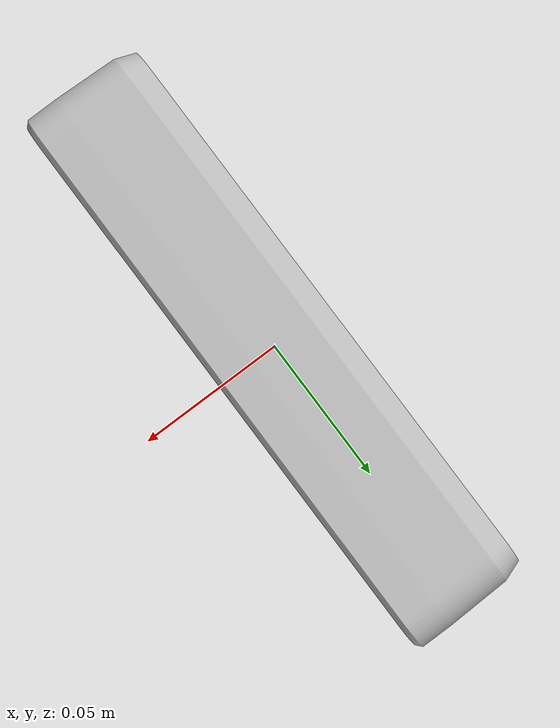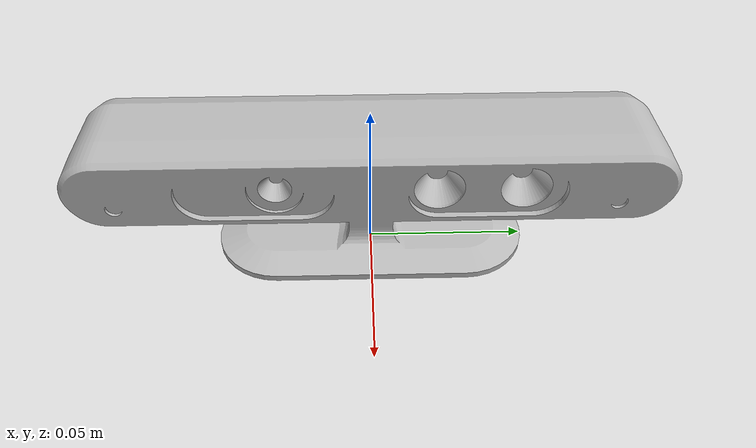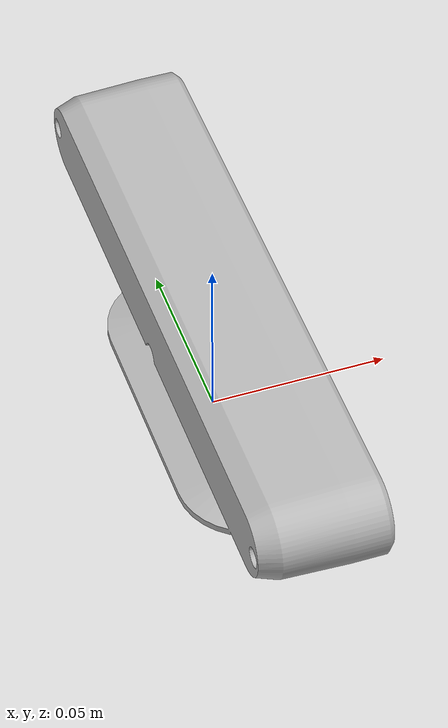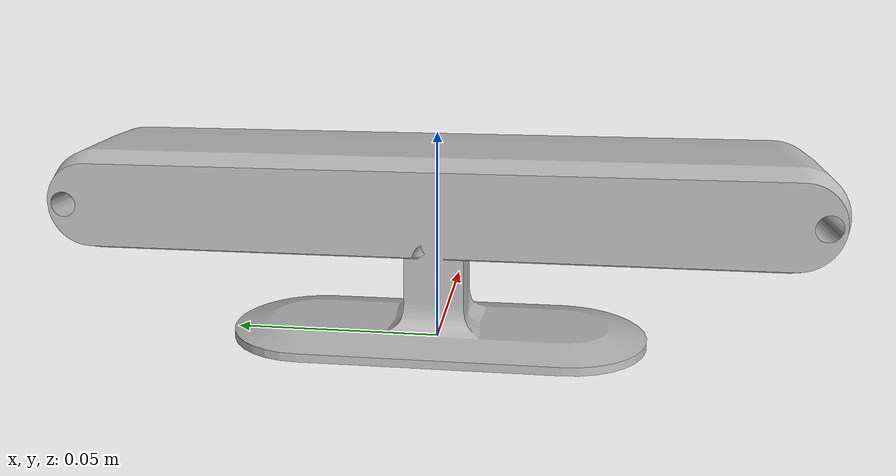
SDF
<?xml version="1.0" ?>
<sdf version="1.6">
  <model name="asus_xtion_pro_camera">
    <pose>0 0 0.0235 0 0 0</pose>
    <link name="link">
      <inertial>
        <mass>0.316</mass>
        <inertia>
          <ixx>.0007765</ixx>
          <ixy>0</ixy>
          <ixz>0</ixz>
          <iyy>.0000725</iyy>
          <iyz>0</iyz>
          <izz>.0007657</izz>
        </inertia>
      </inertial>
      <collision name="collision">
        <geometry>
          <box>
            <size>0.04 0.18 0.047</size>
          </box>
        </geometry>
        <surface>
          <contact>
            <ode>
              <max_vel>0.1</max_vel>
              <min_depth>0.001</min_depth>
            </ode>
          </contact>
          <friction>
            <ode>
              <mu>0.4</mu>
              <mu2>0.4</mu2>
            </ode>
          </friction>
        </surface>
      </collision>
      <visual name="visual">
        <geometry>
          <mesh>
            <uri>model://asus_xtion_pro_camera/meshes/asus_xtion_pro_camera.dae</uri>
          </mesh>
        </geometry>
      </visual>
      <sensor name="camera" type="depth">
        <pose>0.0085 0.0105 0.0197 0 0 0</pose>
        <update_rate>30</update_rate>
        <camera>
          <horizontal_fov>1.01229</horizontal_fov>
          <image>
            <width>640</width>
            <height>480</height>
            <format>R8G8B8</format>
          </image>
          <clip>
            <near>0.3</near>
            <far>3.5</far>
          </clip>
        </camera>
      </sensor>
    </link>
  </model>
</sdf>
